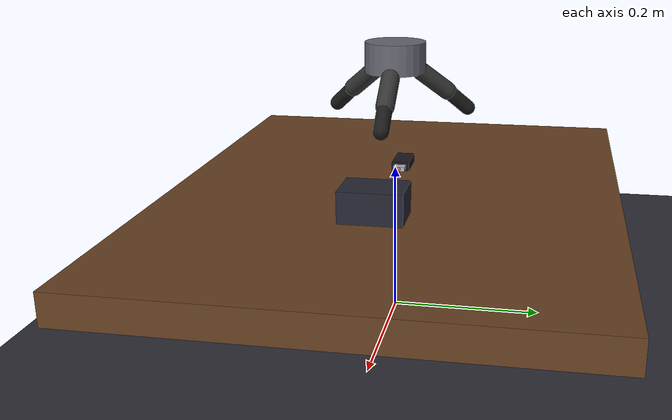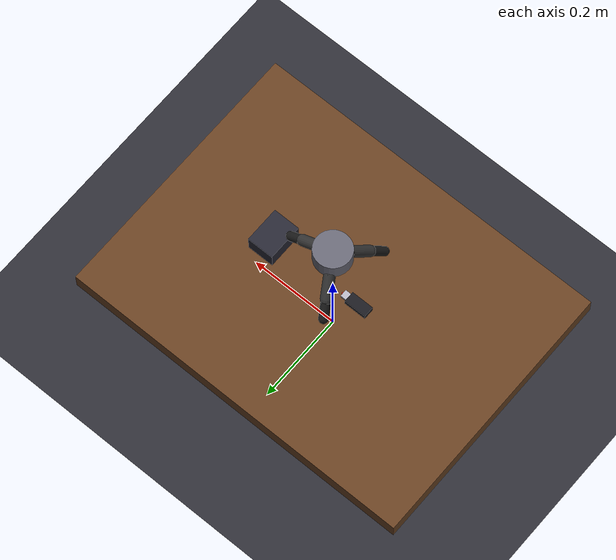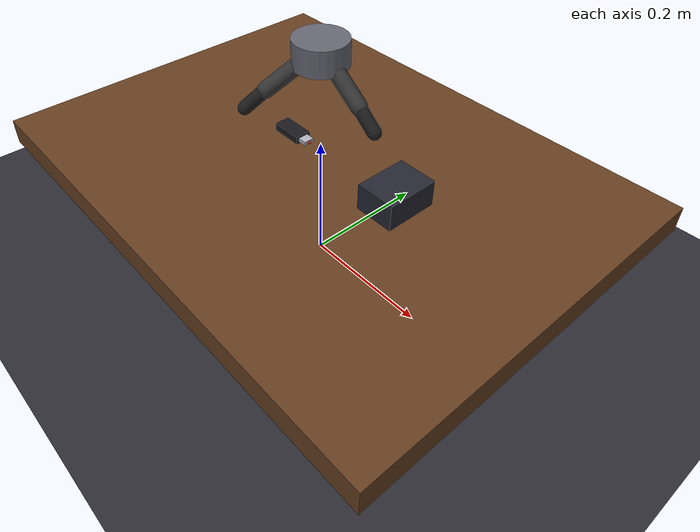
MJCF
<mujoco model="usb_insertion">
  <compiler angle="radian" autolimits="true"/>

  <option gravity="0 0 -9.81" timestep="0.002">
    <flag warmstart="enable"/>
  </option>

  <default>
    <joint damping="0.5" armature="0.01"/>
    <geom friction="1.0 0.5 0.5" condim="4" contype="1" conaffinity="1"/>
    <position kp="20" kv="2"/>
  </default>

  <asset>
    <texture type="skybox" builtin="gradient" rgb1="0.4 0.5 0.6" rgb2="0.1 0.1 0.15" width="512" height="512"/>
    <texture name="wood" type="2d" builtin="flat" rgb1="0.4 0.25 0.13" rgb2="0.35 0.2 0.1" width="512" height="512"/>
    <texture name="grid" type="2d" builtin="checker" rgb1="0.15 0.15 0.18" rgb2="0.2 0.2 0.23" width="512" height="512"/>

    <material name="table" texture="wood" texrepeat="4 4"/>
    <material name="floor" texture="grid" texrepeat="10 10"/>
    <material name="gripper_metal" rgba="0.4 0.4 0.45 1"/>
    <material name="finger_rubber" rgba="0.2 0.2 0.2 1"/>
    <material name="finger_tip" rgba="0.1 0.1 0.1 1"/>
    <material name="usb_body" rgba="0.1 0.1 0.12 1"/>
    <material name="usb_metal" rgba="0.7 0.7 0.75 1"/>
    <material name="port_plastic" rgba="0.15 0.15 0.2 1"/>
    <material name="port_inner" rgba="0.05 0.05 0.05 1"/>
  </asset>

  <worldbody>
    <!-- Ground and table -->
    <geom name="floor" type="plane" size="1 1 0.1" material="floor" pos="0 0 0"/>
    <geom name="table" type="box" size="0.4 0.3 0.02" pos="0 0 0.15" material="table"/>

    <!-- USB Port (fixed) -->
    <body name="usb_port" pos="0.15 0 0.2">
      <geom name="port_housing" type="box" size="0.03 0.04 0.02" material="port_plastic"/>
      <!-- The slot where USB goes -->
      <geom name="port_slot_back" type="box" size="0.008 0.02 0.004" pos="-0.015 0 0" material="port_inner" contype="1" conaffinity="1"/>
      <geom name="port_slot_top" type="box" size="0.015 0.018 0.001" pos="0 0 0.005" material="port_inner"/>
      <geom name="port_slot_bottom" type="box" size="0.015 0.018 0.001" pos="0 0 -0.005" material="port_inner"/>
      <site name="port_target" pos="0 0 0" size="0.01" rgba="0 1 0 0.3"/>
    </body>

    <!-- USB Stick (manipulatable) -->
    <body name="usb_stick" pos="-0.05 0 0.19">
      <freejoint name="usb_joint"/>
      <!-- Main body -->
      <geom name="usb_body" type="box" size="0.025 0.012 0.006" pos="-0.015 0 0" material="usb_body" mass="0.02"/>
      <!-- Metal connector -->
      <geom name="usb_connector" type="box" size="0.012 0.008 0.003" pos="0.012 0 0" material="usb_metal" mass="0.005"/>
      <site name="usb_tip" pos="0.024 0 0" size="0.003" rgba="1 0 0 0.5"/>
    </body>

    <!-- Robotiq-style 3-Finger Gripper -->
    <body name="gripper_base" pos="0 0 0.35">
      <joint name="base_x" type="slide" axis="1 0 0" range="-0.3 0.3" damping="5"/>
      <joint name="base_y" type="slide" axis="0 1 0" range="-0.3 0.3" damping="5"/>
      <joint name="base_z" type="slide" axis="0 0 1" range="0.15 0.5" damping="5"/>
      <joint name="base_roll" type="hinge" axis="1 0 0" range="-3.14 3.14" damping="1"/>
      <joint name="base_pitch" type="hinge" axis="0 1 0" range="-1.57 1.57" damping="1"/>
      <joint name="base_yaw" type="hinge" axis="0 0 1" range="-3.14 3.14" damping="1"/>

      <geom name="palm" type="cylinder" size="0.04 0.02" material="gripper_metal"/>

      <!-- Finger A -->
      <body name="finger_a_proximal" pos="0.035 0 -0.02">
        <joint name="finger_a_base" type="hinge" axis="0 1 0" range="-0.2 1.4"/>
        <geom name="finger_a_prox" type="capsule" fromto="0 0 0 0.04 0 -0.03" size="0.012" material="finger_rubber"/>
        <body name="finger_a_distal" pos="0.04 0 -0.03">
          <joint name="finger_a_tip" type="hinge" axis="0 1 0" range="-0.4 1.2"/>
          <geom name="finger_a_dist" type="capsule" fromto="0 0 0 0.03 0 -0.025" size="0.01" material="finger_tip"/>
          <site name="finger_a_site" pos="0.03 0 -0.025" size="0.005"/>
        </body>
      </body>

      <!-- Finger B -->
      <body name="finger_b_proximal" pos="-0.0175 0.0303 -0.02" euler="0 0 2.094">
        <joint name="finger_b_base" type="hinge" axis="0 1 0" range="-0.2 1.4"/>
        <geom name="finger_b_prox" type="capsule" fromto="0 0 0 0.04 0 -0.03" size="0.012" material="finger_rubber"/>
        <body name="finger_b_distal" pos="0.04 0 -0.03">
          <joint name="finger_b_tip" type="hinge" axis="0 1 0" range="-0.4 1.2"/>
          <geom name="finger_b_dist" type="capsule" fromto="0 0 0 0.03 0 -0.025" size="0.01" material="finger_tip"/>
          <site name="finger_b_site" pos="0.03 0 -0.025" size="0.005"/>
        </body>
      </body>

      <!-- Finger C -->
      <body name="finger_c_proximal" pos="-0.0175 -0.0303 -0.02" euler="0 0 -2.094">
        <joint name="finger_c_base" type="hinge" axis="0 1 0" range="-0.2 1.4"/>
        <geom name="finger_c_prox" type="capsule" fromto="0 0 0 0.04 0 -0.03" size="0.012" material="finger_rubber"/>
        <body name="finger_c_distal" pos="0.04 0 -0.03">
          <joint name="finger_c_tip" type="hinge" axis="0 1 0" range="-0.4 1.2"/>
          <geom name="finger_c_dist" type="capsule" fromto="0 0 0 0.03 0 -0.025" size="0.01" material="finger_tip"/>
          <site name="finger_c_site" pos="0.03 0 -0.025" size="0.005"/>
        </body>
      </body>
    </body>
  </worldbody>

  <actuator>
    <position name="act_base_x" joint="base_x" kp="100" ctrlrange="-0.3 0.3"/>
    <position name="act_base_y" joint="base_y" kp="100" ctrlrange="-0.3 0.3"/>
    <position name="act_base_z" joint="base_z" kp="100" ctrlrange="0.15 0.5"/>
    <position name="act_base_roll" joint="base_roll" kp="50" ctrlrange="-3.14 3.14"/>
    <position name="act_base_pitch" joint="base_pitch" kp="50" ctrlrange="-1.57 1.57"/>
    <position name="act_base_yaw" joint="base_yaw" kp="50" ctrlrange="-3.14 3.14"/>
    <position name="act_finger_a_base" joint="finger_a_base" kp="10" ctrlrange="-0.2 1.4"/>
    <position name="act_finger_a_tip" joint="finger_a_tip" kp="5" ctrlrange="-0.4 1.2"/>
    <position name="act_finger_b_base" joint="finger_b_base" kp="10" ctrlrange="-0.2 1.4"/>
    <position name="act_finger_b_tip" joint="finger_b_tip" kp="5" ctrlrange="-0.4 1.2"/>
    <position name="act_finger_c_base" joint="finger_c_base" kp="10" ctrlrange="-0.2 1.4"/>
    <position name="act_finger_c_tip" joint="finger_c_tip" kp="5" ctrlrange="-0.4 1.2"/>
  </actuator>

  <sensor>
    <touch name="finger_a_touch" site="finger_a_site"/>
    <touch name="finger_b_touch" site="finger_b_site"/>
    <touch name="finger_c_touch" site="finger_c_site"/>
  </sensor>
</mujoco>
